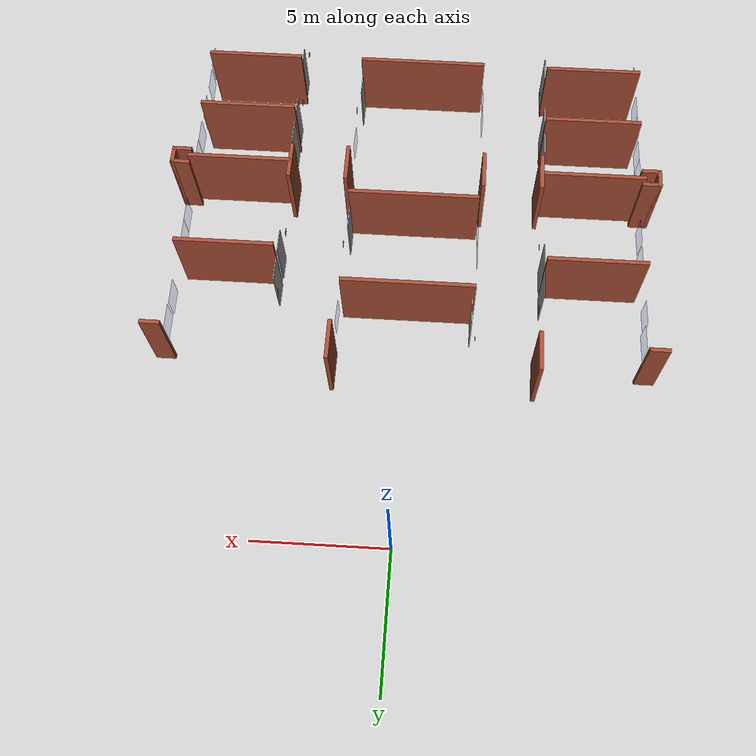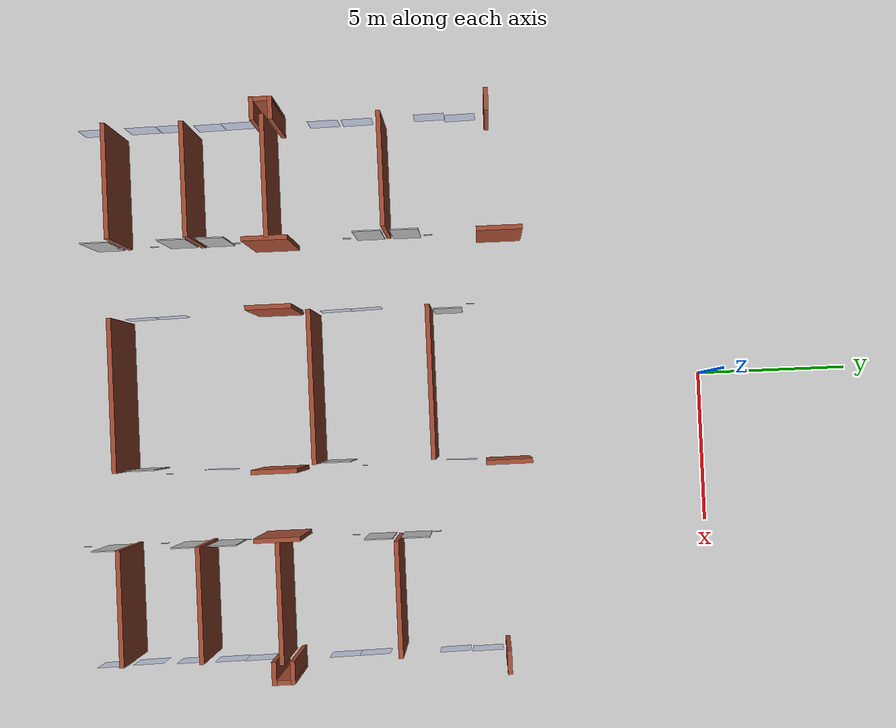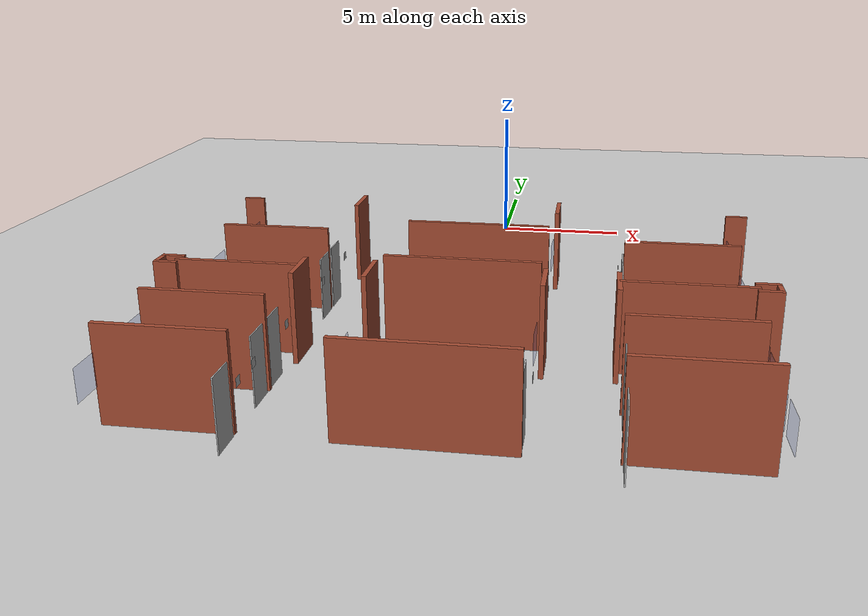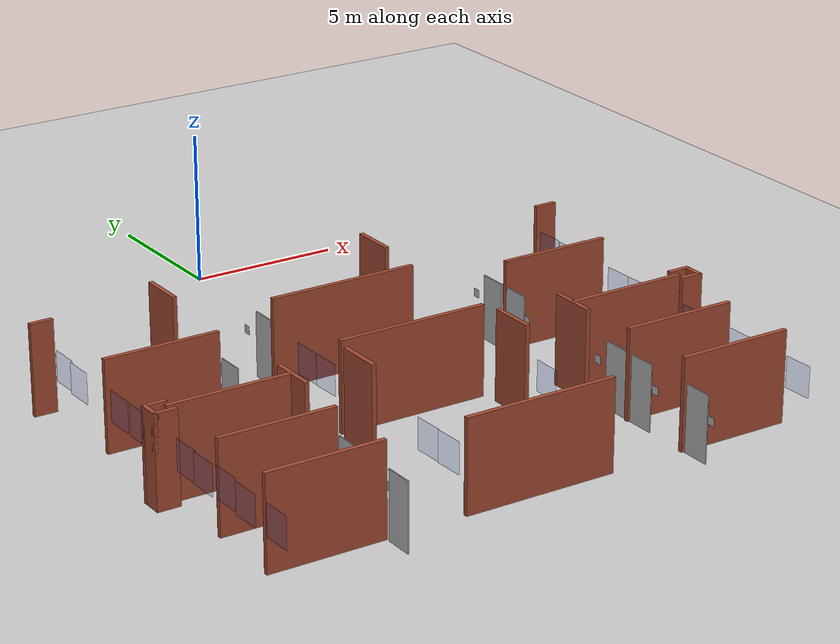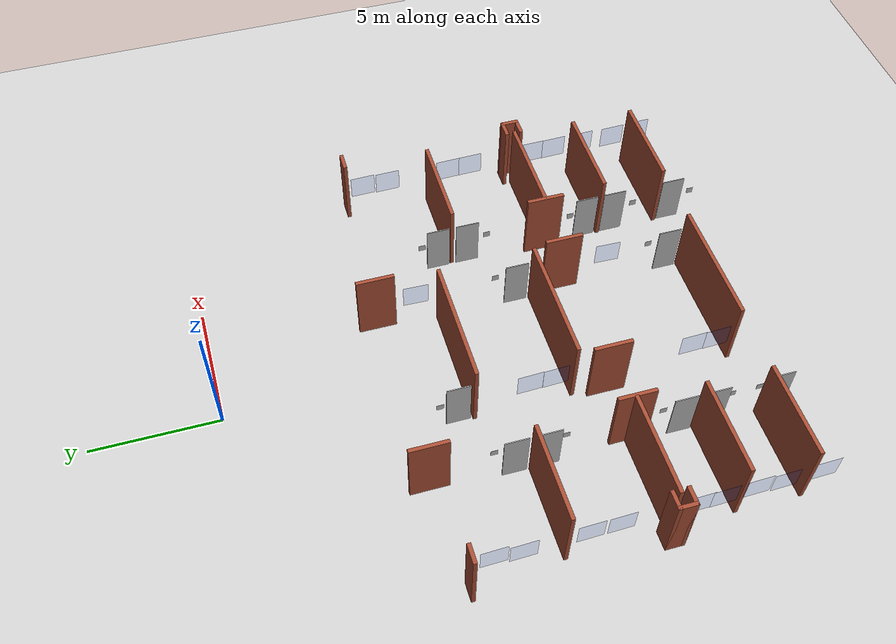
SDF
<sdf version="1.6">
 <world name="default">
  <model name="ground_plane">
   <static>1</static>
   <link name="link">
    <collision name="collision">
     <geometry><plane><normal>0 0 1</normal><size>100 100</size></plane></geometry>
     <surface><friction><ode><mu>100</mu><mu2>50</mu2></ode></friction></surface>
    </collision>
    <visual name="visual">
     <cast_shadows>0</cast_shadows>
     <geometry><plane><normal>0 0 1</normal><size>100 100</size></plane></geometry>
     <material>
      <script><uri>file://media/materials/scripts/gazebo.material</uri><name>Gazebo/Grey</name></script>
     </material>
    </visual>
   </link>
  </model>
  <model name="UNFRGS_INF_-_Predio_73">
   <pose>-0.02513 1.0401 -0.009 0 -0 0</pose>
   <link name="Wall_149">
    <collision name="Wall_149_Collision">
     <geometry><box><size>5 0.15 2.96</size></box></geometry>
     <pose>0 0 1.48 0 -0 0</pose>
    </collision>
    <visual name="Wall_149_Visual">
     <pose>0 0 1.48 0 -0 0</pose>
     <geometry><box><size>5 0.15 2.96</size></box></geometry>
     <material>
      <script><uri>file://media/materials/scripts/gazebo.material</uri><name>Gazebo/Bricks</name></script>
      <ambient>0.929412 1 0.760784 1</ambient>
     </material>
     <meta><layer>0</layer></meta>
    </visual>
    <pose>-0.012133 -20.3742 0 0 -0 0</pose>
   </link>
   <link name="Wall_151">
    <collision name="Wall_151_Collision">
     <geometry><box><size>5 0.15 2.96</size></box></geometry>
     <pose>0 0 1.48 0 -0 0</pose>
    </collision>
    <visual name="Wall_151_Visual">
     <pose>0 0 1.48 0 -0 0</pose>
     <geometry><box><size>5 0.15 2.96</size></box></geometry>
     <material>
      <script><uri>file://media/materials/scripts/gazebo.material</uri><name>Gazebo/Bricks</name></script>
      <ambient>0.929412 1 0.760784 1</ambient>
     </material>
     <meta><layer>0</layer></meta>
    </visual>
    <pose>-0.018133 -13.9553 0 0 -0 0</pose>
   </link>
   <link name="Wall_153">
    <collision name="Wall_153_Collision">
     <geometry><box><size>5 0.15 2.96</size></box></geometry>
     <pose>0 0 1.48 0 -0 0</pose>
    </collision>
    <visual name="Wall_153_Visual">
     <pose>0 0 1.48 0 -0 0</pose>
     <geometry><box><size>5 0.15 2.96</size></box></geometry>
     <material>
      <script><uri>file://media/materials/scripts/gazebo.material</uri><name>Gazebo/Bricks</name></script>
      <ambient>0.929412 1 0.760784 1</ambient>
     </material>
     <meta><layer>0</layer></meta>
    </visual>
    <pose>-0.016133 -10.1202 0 0 -0 0</pose>
   </link>
   <link name="Wall_201">
    <collision name="Wall_201_Collision">
     <geometry><box><size>1.5 0.15 2.96</size></box></geometry>
     <pose>0 0 1.48 0 -0 0</pose>
    </collision>
    <visual name="Wall_201_Visual">
     <pose>0 0 1.48 0 -0 0</pose>
     <geometry><box><size>1.5 0.15 2.96</size></box></geometry>
     <material>
      <script><uri>file://media/materials/scripts/gazebo.material</uri><name>Gazebo/Bricks</name></script>
      <ambient>0.929412 1 0.760784 1</ambient>
     </material>
     <meta><layer>0</layer></meta>
    </visual>
    <pose>-4.87613 -7.68822 0 0 0 -1.5708</pose>
   </link>
   <link name="Wall_205">
    <collision name="Wall_205_Collision">
     <geometry><box><size>1.5 0.15 2.96</size></box></geometry>
     <pose>0 0 1.48 0 -0 0</pose>
    </collision>
    <visual name="Wall_205_Visual">
     <pose>0 0 1.48 0 -0 0</pose>
     <geometry><box><size>1.5 0.15 2.96</size></box></geometry>
     <material>
      <script><uri>file://media/materials/scripts/gazebo.material</uri><name>Gazebo/Bricks</name></script>
      <ambient>0.929412 1 0.760784 1</ambient>
     </material>
     <meta><layer>0</layer></meta>
    </visual>
    <pose>2.66287 -7.68822 0 0 0 -1.5708</pose>
   </link>
   <link name="Wall_209">
    <collision name="Wall_209_Collision">
     <geometry><box><size>3.75 0.15 2.96</size></box></geometry>
     <pose>0 0 1.48 0 -0 0</pose>
    </collision>
    <visual name="Wall_209_Visual">
     <pose>0 0 1.48 0 -0 0</pose>
     <geometry><box><size>3.75 0.15 2.96</size></box></geometry>
     <material>
      <script><uri>file://media/materials/scripts/gazebo.material</uri><name>Gazebo/Bricks</name></script>
      <ambient>0.929412 1 0.760784 1</ambient>
     </material>
     <meta><layer>0</layer></meta>
    </visual>
    <pose>-6.95613 -11.4362 0 0 -0 0</pose>
   </link>
   <link name="Wall_211">
    <collision name="Wall_211_Collision">
     <geometry><box><size>3.75 0.15 2.96</size></box></geometry>
     <pose>0 0 1.48 0 -0 0</pose>
    </collision>
    <visual name="Wall_211_Visual">
     <pose>0 0 1.48 0 -0 0</pose>
     <geometry><box><size>3.75 0.15 2.96</size></box></geometry>
     <material>
      <script><uri>file://media/materials/scripts/gazebo.material</uri><name>Gazebo/Bricks</name></script>
      <ambient>0.929412 1 0.760784 1</ambient>
     </material>
     <meta><layer>0</layer></meta>
    </visual>
    <pose>6.92487 -11.4362 0 0 -0 0</pose>
   </link>
   <link name="Wall_213">
    <collision name="Wall_213_Collision">
     <geometry><box><size>4 0.15 2.96</size></box></geometry>
     <pose>0 0 1.48 0 -0 0</pose>
    </collision>
    <visual name="Wall_213_Visual">
     <pose>0 0 1.48 0 -0 0</pose>
     <geometry><box><size>4 0.15 2.96</size></box></geometry>
     <material>
      <script><uri>file://media/materials/scripts/gazebo.material</uri><name>Gazebo/Bricks</name></script>
      <ambient>0.929412 1 0.760784 1</ambient>
     </material>
     <meta><layer>0</layer></meta>
    </visual>
    <pose>-6.88713 -15.2052 0 0 -0 0</pose>
   </link>
   <link name="Wall_215">
    <collision name="Wall_215_Collision">
     <geometry><box><size>1.5 0.15 2.96</size></box></geometry>
     <pose>0 0 1.48 0 -0 0</pose>
    </collision>
    <visual name="Wall_215_Visual">
     <pose>0 0 1.48 0 -0 0</pose>
     <geometry><box><size>1.5 0.15 2.96</size></box></geometry>
     <material>
      <script><uri>file://media/materials/scripts/gazebo.material</uri><name>Gazebo/Bricks</name></script>
      <ambient>0.929412 1 0.760784 1</ambient>
     </material>
     <meta><layer>0</layer></meta>
    </visual>
    <pose>-4.87613 -15.2682 0 0 0 -1.5708</pose>
   </link>
   <link name="Wall_217">
    <collision name="Wall_217_Collision">
     <geometry><box><size>1.5 0.15 2.96</size></box></geometry>
     <pose>0 0 1.48 0 -0 0</pose>
    </collision>
    <visual name="Wall_217_Visual">
     <pose>0 0 1.48 0 -0 0</pose>
     <geometry><box><size>1.5 0.15 2.96</size></box></geometry>
     <material>
      <script><uri>file://media/materials/scripts/gazebo.material</uri><name>Gazebo/Bricks</name></script>
      <ambient>0.929412 1 0.760784 1</ambient>
     </material>
     <meta><layer>0</layer></meta>
    </visual>
    <pose>-2.65013 -15.2402 0 0 0 -1.5708</pose>
   </link>
   <link name="Wall_219">
    <collision name="Wall_219_Collision">
     <geometry><box><size>1.5 0.15 2.96</size></box></geometry>
     <pose>0 0 1.48 0 -0 0</pose>
    </collision>
    <visual name="Wall_219_Visual">
     <pose>0 0 1.48 0 -0 0</pose>
     <geometry><box><size>1.5 0.15 2.96</size></box></geometry>
     <material>
      <script><uri>file://media/materials/scripts/gazebo.material</uri><name>Gazebo/Bricks</name></script>
      <ambient>0.929412 1 0.760784 1</ambient>
     </material>
     <meta><layer>0</layer></meta>
    </visual>
    <pose>2.64887 -15.2542 0 0 0 -1.5708</pose>
   </link>
   <link name="Wall_221">
    <collision name="Wall_221_Collision">
     <geometry><box><size>1.5 0.15 2.96</size></box></geometry>
     <pose>0 0 1.48 0 -0 0</pose>
    </collision>
    <visual name="Wall_221_Visual">
     <pose>0 0 1.48 0 -0 0</pose>
     <geometry><box><size>1.5 0.15 2.96</size></box></geometry>
     <material>
      <script><uri>file://media/materials/scripts/gazebo.material</uri><name>Gazebo/Bricks</name></script>
      <ambient>0.929412 1 0.760784 1</ambient>
     </material>
     <meta><layer>0</layer></meta>
    </visual>
    <pose>4.84587 -15.2542 0 0 0 -1.5708</pose>
   </link>
   <link name="Wall_223">
    <collision name="Wall_223_Collision">
     <geometry><box><size>4 0.15 2.96</size></box></geometry>
     <pose>0 0 1.48 0 -0 0</pose>
    </collision>
    <visual name="Wall_223_Visual">
     <pose>0 0 1.48 0 -0 0</pose>
     <geometry><box><size>4 0.15 2.96</size></box></geometry>
     <material>
      <script><uri>file://media/materials/scripts/gazebo.material</uri><name>Gazebo/Bricks</name></script>
      <ambient>0.929412 1 0.760784 1</ambient>
     </material>
     <meta><layer>0</layer></meta>
    </visual>
    <pose>6.84087 -15.2472 0 0 -0 0</pose>
   </link>
   <link name="Wall_225">
    <collision name="Wall_225_Collision">
     <geometry><box><size>3.75 0.15 2.96</size></box></geometry>
     <pose>0 0 1.48 0 -0 0</pose>
    </collision>
    <visual name="Wall_225_Visual">
     <pose>0 0 1.48 0 -0 0</pose>
     <geometry><box><size>3.75 0.15 2.96</size></box></geometry>
     <material>
      <script><uri>file://media/materials/scripts/gazebo.material</uri><name>Gazebo/Bricks</name></script>
      <ambient>0.929412 1 0.760784 1</ambient>
     </material>
     <meta><layer>0</layer></meta>
    </visual>
    <pose>-6.90013 -17.8062 0 0 -0 0</pose>
   </link>
   <link name="Wall_227">
    <collision name="Wall_227_Collision">
     <geometry><box><size>3.75 0.15 2.96</size></box></geometry>
     <pose>0 0 1.48 0 -0 0</pose>
    </collision>
    <visual name="Wall_227_Visual">
     <pose>0 0 1.48 0 -0 0</pose>
     <geometry><box><size>3.75 0.15 2.96</size></box></geometry>
     <material>
      <script><uri>file://media/materials/scripts/gazebo.material</uri><name>Gazebo/Bricks</name></script>
      <ambient>0.929412 1 0.760784 1</ambient>
     </material>
     <meta><layer>0</layer></meta>
    </visual>
    <pose>6.82687 -17.8062 0 0 -0 0</pose>
   </link>
   <link name="Wall_229">
    <collision name="Wall_229_Collision">
     <geometry><box><size>3.75 0.15 2.96</size></box></geometry>
     <pose>0 0 1.48 0 -0 0</pose>
    </collision>
    <visual name="Wall_229_Visual">
     <pose>0 0 1.48 0 -0 0</pose>
     <geometry><box><size>3.75 0.15 2.96</size></box></geometry>
     <material>
      <script><uri>file://media/materials/scripts/gazebo.material</uri><name>Gazebo/Bricks</name></script>
      <ambient>0.929412 1 0.760784 1</ambient>
     </material>
     <meta><layer>0</layer></meta>
    </visual>
    <pose>-6.94213 -20.3372 0 0 -0 0</pose>
   </link>
   <link name="Wall_231">
    <collision name="Wall_231_Collision">
     <geometry><box><size>3.75 0.15 2.96</size></box></geometry>
     <pose>0 0 1.48 0 -0 0</pose>
    </collision>
    <visual name="Wall_231_Visual">
     <pose>0 0 1.48 0 -0 0</pose>
     <geometry><box><size>3.75 0.15 2.96</size></box></geometry>
     <material>
      <script><uri>file://media/materials/scripts/gazebo.material</uri><name>Gazebo/Bricks</name></script>
      <ambient>0.929412 1 0.760784 1</ambient>
     </material>
     <meta><layer>0</layer></meta>
    </visual>
    <pose>6.82687 -20.3652 0 0 -0 0</pose>
   </link>
   <link name="Wall_676">
    <collision name="Wall_676_Collision">
     <geometry><box><size>0.75 0.15 2.96</size></box></geometry>
     <pose>0 0 1.48 0 -0 0</pose>
    </collision>
    <visual name="Wall_676_Visual">
     <pose>0 0 1.48 0 -0 0</pose>
     <geometry><box><size>0.75 0.15 2.96</size></box></geometry>
     <material>
      <script><uri>file://media/materials/scripts/gazebo.material</uri><name>Gazebo/Bricks</name></script>
      <ambient>0.498039 0.498039 0.498039 1</ambient>
     </material>
     <meta><layer>0</layer></meta>
    </visual>
    <pose>-9.07813 -14.9152 0 0 -0 3.14159</pose>
   </link>
   <link name="Wall_677">
    <collision name="Wall_677_Collision">
     <geometry><box><size>0.75 0.15 2.96</size></box></geometry>
     <pose>0 0 1.48 0 -0 0</pose>
    </collision>
    <visual name="Wall_677_Visual">
     <pose>0 0 1.48 0 -0 0</pose>
     <geometry><box><size>0.75 0.15 2.96</size></box></geometry>
     <material>
      <script><uri>file://media/materials/scripts/gazebo.material</uri><name>Gazebo/Bricks</name></script>
      <ambient>0.498039 0.498039 0.498039 1</ambient>
     </material>
     <meta><layer>0</layer></meta>
    </visual>
    <pose>-9.37813 -15.2152 0 0 0 -1.5708</pose>
   </link>
   <link name="Wall_678">
    <collision name="Wall_678_Collision">
     <geometry><box><size>0.75 0.15 2.96</size></box></geometry>
     <pose>0 0 1.48 0 -0 0</pose>
    </collision>
    <visual name="Wall_678_Visual">
     <pose>0 0 1.48 0 -0 0</pose>
     <geometry><box><size>0.75 0.15 2.96</size></box></geometry>
     <material>
      <script><uri>file://media/materials/scripts/gazebo.material</uri><name>Gazebo/Bricks</name></script>
      <ambient>0.498039 0.498039 0.498039 1</ambient>
     </material>
     <meta><layer>0</layer></meta>
    </visual>
    <pose>-9.07813 -15.5152 0 0 -0 0</pose>
   </link>
   <link name="Wall_680">
    <collision name="Wall_680_Collision">
     <geometry><box><size>0.75 0.15 2.96</size></box></geometry>
     <pose>0 0 1.48 0 -0 0</pose>
    </collision>
    <visual name="Wall_680_Visual">
     <pose>0 0 1.48 0 -0 0</pose>
     <geometry><box><size>0.75 0.15 2.96</size></box></geometry>
     <material>
      <script><uri>file://media/materials/scripts/gazebo.material</uri><name>Gazebo/Bricks</name></script>
      <ambient>0.498039 0.498039 0.498039 1</ambient>
     </material>
     <meta><layer>0</layer></meta>
    </visual>
    <pose>9.09287 -14.9152 0 0 -0 0</pose>
   </link>
   <link name="Wall_681">
    <collision name="Wall_681_Collision">
     <geometry><box><size>0.75 0.15 2.96</size></box></geometry>
     <pose>0 0 1.48 0 -0 0</pose>
    </collision>
    <visual name="Wall_681_Visual">
     <pose>0 0 1.48 0 -0 0</pose>
     <geometry><box><size>0.75 0.15 2.96</size></box></geometry>
     <material>
      <script><uri>file://media/materials/scripts/gazebo.material</uri><name>Gazebo/Bricks</name></script>
      <ambient>0.498039 0.498039 0.498039 1</ambient>
     </material>
     <meta><layer>0</layer></meta>
    </visual>
    <pose>9.39287 -15.2152 0 0 0 -1.5708</pose>
   </link>
   <link name="Wall_682">
    <collision name="Wall_682_Collision">
     <geometry><box><size>0.75 0.15 2.96</size></box></geometry>
     <pose>0 0 1.48 0 -0 0</pose>
    </collision>
    <visual name="Wall_682_Visual">
     <pose>0 0 1.48 0 -0 0</pose>
     <geometry><box><size>0.75 0.15 2.96</size></box></geometry>
     <material>
      <script><uri>file://media/materials/scripts/gazebo.material</uri><name>Gazebo/Bricks</name></script>
      <ambient>0.498039 0.498039 0.498039 1</ambient>
     </material>
     <meta><layer>0</layer></meta>
    </visual>
    <pose>9.09287 -15.5152 0 0 -0 3.14159</pose>
   </link>
   <link name="Wall_686">
    <collision name="Wall_686_Collision">
     <geometry><box><size>0.75 0.15 2.96</size></box></geometry>
     <pose>0 0 1.48 0 -0 0</pose>
    </collision>
    <visual name="Wall_686_Visual">
     <pose>0 0 1.48 0 -0 0</pose>
     <geometry><box><size>0.75 0.15 2.96</size></box></geometry>
     <material>
      <script><uri>file://media/materials/scripts/gazebo.material</uri><name>Gazebo/Bricks</name></script>
      <ambient>0.498039 0.498039 0.498039 1</ambient>
     </material>
     <meta><layer>0</layer></meta>
    </visual>
    <pose>9.07887 -7.96322 0 0 -0 3.14159</pose>
   </link>
   <link name="Wall_690">
    <collision name="Wall_690_Collision">
     <geometry><box><size>0.75 0.15 2.96</size></box></geometry>
     <pose>0 0 1.48 0 -0 0</pose>
    </collision>
    <visual name="Wall_690_Visual">
     <pose>0 0 1.48 0 -0 0</pose>
     <geometry><box><size>0.75 0.15 2.96</size></box></geometry>
     <material>
      <script><uri>file://media/materials/scripts/gazebo.material</uri><name>Gazebo/Bricks</name></script>
      <ambient>0.498039 0.498039 0.498039 1</ambient>
     </material>
     <meta><layer>0</layer></meta>
    </visual>
    <pose>-9.04913 -7.93422 0 0 -0 0</pose>
   </link>
   <static>1</static>
  </model>
  <model name="placa_235">
   <pose>4.88 -9.1 1.48209 0 -0 1.57</pose>
   <static>1</static>
   <link name="link">
    <collision name="collision"><geometry><box><size>0.268 0.001 0.268</size></box></geometry></collision>
    <visual name="visual">
     <geometry><box><size>0.268 0.001 0.268</size></box></geometry>
     <material>
      <script>
       <uri>model://Placa_235/Materials/Scripts</uri>
       <uri>model://Placa_235/Materials/Textures</uri>
       <name>TexturaPlaca_235/Image</name>
      </script>
     </material>
    </visual>
   </link>
  </model>
  <model name="placa_237">
   <pose>4.88 -11.8 1.48209 0 -0 1.57</pose>
   <static>1</static>
   <link name="link">
    <collision name="collision"><geometry><box><size>0.268 0.001 0.268</size></box></geometry></collision>
    <visual name="visual">
     <geometry><box><size>0.268 0.001 0.268</size></box></geometry>
     <material>
      <script>
       <uri>model://Placa_237/Materials/Scripts</uri>
       <uri>model://Placa_237/Materials/Textures</uri>
       <name>TexturaPlaca_237/Image</name>
      </script>
     </material>
    </visual>
   </link>
  </model>
  <model name="placa_238">
   <pose>-2.615 -7.7 1.48209 0 -0 1.57</pose>
   <static>1</static>
   <link name="link">
    <collision name="collision"><geometry><box><size>0.268 0.001 0.268</size></box></geometry></collision>
    <visual name="visual">
     <geometry><box><size>0.268 0.001 0.268</size></box></geometry>
     <material>
      <script>
       <uri>model://Placa_238/Materials/Scripts</uri>
       <uri>model://Placa_238/Materials/Textures</uri>
       <name>TexturaPlaca_238/Image</name>
      </script>
     </material>
    </visual>
   </link>
  </model>
  <model name="placa_239">
   <pose>2.6 -11.45 1.48209 0 -0 1.57</pose>
   <static>1</static>
   <link name="link">
    <collision name="collision"><geometry><box><size>0.268 0.001 0.268</size></box></geometry></collision>
    <visual name="visual">
     <geometry><box><size>0.268 0.001 0.268</size></box></geometry>
     <material>
      <script>
       <uri>model://Placa_239/Materials/Scripts</uri>
       <uri>model://Placa_239/Materials/Textures</uri>
       <name>TexturaPlaca_239/Image</name>
      </script>
     </material>
    </visual>
   </link>
  </model>
  <model name="placa_240">
   <pose>-4.96 -9 1.48208 0 -0 1.57</pose>
   <static>1</static>
   <link name="link">
    <collision name="collision"><geometry><box><size>0.268 0.001 0.268</size></box></geometry></collision>
    <visual name="visual">
     <geometry><box><size>0.268 0.001 0.268</size></box></geometry>
     <material>
      <script>
       <uri>model://Placa_240/Materials/Scripts</uri>
       <uri>model://Placa_240/Materials/Textures</uri>
       <name>TexturaPlaca_240/Image</name>
      </script>
     </material>
    </visual>
   </link>
  </model>
  <model name="placa_241">
   <pose>4.88 -15.4 1.48209 0 -0 1.57</pose>
   <static>1</static>
   <link name="link">
    <collision name="collision"><geometry><box><size>0.268 0.001 0.268</size></box></geometry></collision>
    <visual name="visual">
     <geometry><box><size>0.268 0.001 0.268</size></box></geometry>
     <material>
      <script>
       <uri>model://Placa_241/Materials/Scripts</uri>
       <uri>model://Placa_241/Materials/Textures</uri>
       <name>TexturaPlaca_241/Image</name>
      </script>
     </material>
    </visual>
   </link>
  </model>
  <model name="placa_242">
   <pose>-4.96 -11.7 1.48208 0 -0 1.57</pose>
   <static>1</static>
   <link name="link">
    <collision name="collision"><geometry><box><size>0.268 0.001 0.268</size></box></geometry></collision>
    <visual name="visual">
     <geometry><box><size>0.268 0.001 0.268</size></box></geometry>
     <material>
      <script>
       <uri>model://Placa_242/Materials/Scripts</uri>
       <uri>model://Placa_242/Materials/Textures</uri>
       <name>TexturaPlaca_242/Image</name>
      </script>
     </material>
    </visual>
   </link>
  </model>
  <model name="placa_243">
   <pose>4.88 -18.15 1.48209 0 -0 1.57</pose>
   <static>1</static>
   <link name="link">
    <collision name="collision"><geometry><box><size>0.268 0.001 0.268</size></box></geometry></collision>
    <visual name="visual">
     <geometry><box><size>0.268 0.001 0.268</size></box></geometry>
     <material>
      <script>
       <uri>model://Placa_243/Materials/Scripts</uri>
       <uri>model://Placa_243/Materials/Textures</uri>
       <name>TexturaPlaca_243/Image</name>
      </script>
     </material>
    </visual>
   </link>
  </model>
  <model name="placa_244">
   <pose>-4.96 -15.4 1.48208 0 -0 1.57</pose>
   <static>1</static>
   <link name="link">
    <collision name="collision"><geometry><box><size>0.268 0.001 0.268</size></box></geometry></collision>
    <visual name="visual">
     <geometry><box><size>0.268 0.001 0.268</size></box></geometry>
     <material>
      <script>
       <uri>model://Placa_244/Materials/Scripts</uri>
       <uri>model://Placa_244/Materials/Textures</uri>
       <name>TexturaPlaca_244/Image</name>
      </script>
     </material>
    </visual>
   </link>
  </model>
  <model name="placa_245">
   <pose>2.6 -17.91 1.48209 0 -0 1.57</pose>
   <static>1</static>
   <link name="link">
    <collision name="collision"><geometry><box><size>0.268 0.001 0.268</size></box></geometry></collision>
    <visual name="visual">
     <geometry><box><size>0.268 0.001 0.268</size></box></geometry>
     <material>
      <script>
       <uri>model://Placa_245/Materials/Scripts</uri>
       <uri>model://Placa_245/Materials/Textures</uri>
       <name>TexturaPlaca_245/Image</name>
      </script>
     </material>
    </visual>
   </link>
  </model>
  <model name="placa_246">
   <pose>-4.96 -18.1 1.48208 0 -0 1.57</pose>
   <static>1</static>
   <link name="link">
    <collision name="collision"><geometry><box><size>0.268 0.001 0.268</size></box></geometry></collision>
    <visual name="visual">
     <geometry><box><size>0.268 0.001 0.268</size></box></geometry>
     <material>
      <script>
       <uri>model://Placa_246/Materials/Scripts</uri>
       <uri>model://Placa_246/Materials/Textures</uri>
       <name>TexturaPlaca_246/Image</name>
      </script>
     </material>
    </visual>
   </link>
  </model>
  <model name="placa_247">
   <pose>4.88 -20.7 1.48209 0 -0 1.57</pose>
   <static>1</static>
   <link name="link">
    <collision name="collision"><geometry><box><size>0.268 0.001 0.268</size></box></geometry></collision>
    <visual name="visual">
     <geometry><box><size>0.268 0.001 0.268</size></box></geometry>
     <material>
      <script>
       <uri>model://Placa_247/Materials/Scripts</uri>
       <uri>model://Placa_247/Materials/Textures</uri>
       <name>TexturaPlaca_247/Image</name>
      </script>
     </material>
    </visual>
   </link>
  </model>
  <model name="placa_248">
   <pose>-4.96 -19.2 1.48208 0 -0 1.57</pose>
   <static>1</static>
   <link name="link">
    <collision name="collision"><geometry><box><size>0.268 0.001 0.268</size></box></geometry></collision>
    <visual name="visual">
     <geometry><box><size>0.268 0.001 0.268</size></box></geometry>
     <material>
      <script>
       <uri>model://Placa_248/Materials/Scripts</uri>
       <uri>model://Placa_248/Materials/Textures</uri>
       <name>TexturaPlaca_248/Image</name>
      </script>
     </material>
    </visual>
   </link>
  </model>
  <model name="PortaInternaDireita_4">
   <pose>-5.1 -9.77 1.075 0 -0 1.57</pose>
   <static>1</static>
   <link name="link">
    <collision name="collision"><geometry><box><size>2.15 3.5 0.94</size></box></geometry></collision>
    <visual name="visual">
     <geometry><box><size>0.94 0.035 2.15</size></box></geometry>
     <material>
      <script>
       <uri>model://PortaInternaDireita/materials/scripts</uri>
       <uri>model://PortaInternaDireita/materials/textures</uri>
       <name>TexturaPortaInternaDireita/Image</name>
      </script>
     </material>
    </visual>
   </link>
  </model>
  <model name="PortaInternaEsquerda_7">
   <pose>-5.1 -11.01 1.075 0 -0 1.57</pose>
   <static>1</static>
   <link name="link">
    <collision name="collision"><geometry><box><size>2.15 3.5 0.94</size></box></geometry></collision>
    <visual name="visual">
     <geometry><box><size>0.94 0.035 2.15</size></box></geometry>
     <material>
      <script>
       <uri>model://PortaInternaEsquerda/materials/scripts</uri>
       <uri>model://PortaInternaEsquerda/materials/textures</uri>
       <name>TexturaPortaInternaEsquerda/Image</name>
      </script>
     </material>
    </visual>
   </link>
  </model>
  <model name="PortaInternaDireita_5">
   <pose>-5.1 -16.17 1.075 0 -0 1.57</pose>
   <static>1</static>
   <link name="link">
    <collision name="collision"><geometry><box><size>2.15 3.5 0.94</size></box></geometry></collision>
    <visual name="visual">
     <geometry><box><size>0.94 0.035 2.15</size></box></geometry>
     <material>
      <script>
       <uri>model://PortaInternaDireita/materials/scripts</uri>
       <uri>model://PortaInternaDireita/materials/textures</uri>
       <name>TexturaPortaInternaDireita/Image</name>
      </script>
     </material>
    </visual>
   </link>
  </model>
  <model name="PortaInternaEsquerda_8">
   <pose>-5.1 -17.43 1.075 0 -0 1.57</pose>
   <static>1</static>
   <link name="link">
    <collision name="collision"><geometry><box><size>2.15 3.5 0.94</size></box></geometry></collision>
    <visual name="visual">
     <geometry><box><size>0.94 0.035 2.15</size></box></geometry>
     <material>
      <script>
       <uri>model://PortaInternaEsquerda/materials/scripts</uri>
       <uri>model://PortaInternaEsquerda/materials/textures</uri>
       <name>TexturaPortaInternaEsquerda/Image</name>
      </script>
     </material>
    </visual>
   </link>
  </model>
  <model name="PortaInternaEsquerda_9">
   <pose>-5.1 -19.9469 1.075 0 -0 1.57</pose>
   <static>1</static>
   <link name="link">
    <collision name="collision"><geometry><box><size>2.15 3.5 0.94</size></box></geometry></collision>
    <visual name="visual">
     <geometry><box><size>0.94 0.035 2.15</size></box></geometry>
     <material>
      <script>
       <uri>model://PortaInternaEsquerda/materials/scripts</uri>
       <uri>model://PortaInternaEsquerda/materials/textures</uri>
       <name>TexturaPortaInternaEsquerda/Image</name>
      </script>
     </material>
    </visual>
   </link>
  </model>
  <model name="PortaInternaDireita_8">
   <pose>5 -19.93 1.075 0 -0 1.57</pose>
   <static>1</static>
   <link name="link">
    <collision name="collision"><geometry><box><size>2.15 3.5 0.94</size></box></geometry></collision>
    <visual name="visual">
     <geometry><box><size>0.94 0.035 2.15</size></box></geometry>
     <material>
      <script>
       <uri>model://PortaInternaDireita/materials/scripts</uri>
       <uri>model://PortaInternaDireita/materials/textures</uri>
       <name>TexturaPortaInternaDireita/Image</name>
      </script>
     </material>
    </visual>
   </link>
  </model>
  <model name="PortaInternaDireita_9">
   <pose>5 -17.35 1.075 0 -0 1.57</pose>
   <static>1</static>
   <link name="link">
    <collision name="collision"><geometry><box><size>2.15 3.5 0.94</size></box></geometry></collision>
    <visual name="visual">
     <geometry><box><size>0.94 0.035 2.15</size></box></geometry>
     <material>
      <script>
       <uri>model://PortaInternaDireita/materials/scripts</uri>
       <uri>model://PortaInternaDireita/materials/textures</uri>
       <name>TexturaPortaInternaDireita/Image</name>
      </script>
     </material>
    </visual>
   </link>
  </model>
  <model name="PortaInternaEsquerda_12">
   <pose>5 -16.15 1.075 0 -0 1.57</pose>
   <static>1</static>
   <link name="link">
    <collision name="collision"><geometry><box><size>2.15 3.5 0.94</size></box></geometry></collision>
    <visual name="visual">
     <geometry><box><size>0.94 0.035 2.15</size></box></geometry>
     <material>
      <script>
       <uri>model://PortaInternaEsquerda/materials/scripts</uri>
       <uri>model://PortaInternaEsquerda/materials/textures</uri>
       <name>TexturaPortaInternaEsquerda/Image</name>
      </script>
     </material>
    </visual>
   </link>
  </model>
  <model name="PortaInternaDireita_10">
   <pose>5 -11.02 1.075 0 -0 1.57</pose>
   <static>1</static>
   <link name="link">
    <collision name="collision"><geometry><box><size>2.15 3.5 0.94</size></box></geometry></collision>
    <visual name="visual">
     <geometry><box><size>0.94 0.035 2.15</size></box></geometry>
     <material>
      <script>
       <uri>model://PortaInternaDireita/materials/scripts</uri>
       <uri>model://PortaInternaDireita/materials/textures</uri>
       <name>TexturaPortaInternaDireita/Image</name>
      </script>
     </material>
    </visual>
   </link>
  </model>
  <model name="PortaInternaEsquerda_13">
   <pose>5 -9.81 1.075 0 -0 1.57</pose>
   <static>1</static>
   <link name="link">
    <collision name="collision"><geometry><box><size>2.15 3.5 0.94</size></box></geometry></collision>
    <visual name="visual">
     <geometry><box><size>0.94 0.035 2.15</size></box></geometry>
     <material>
      <script>
       <uri>model://PortaInternaEsquerda/materials/scripts</uri>
       <uri>model://PortaInternaEsquerda/materials/textures</uri>
       <name>TexturaPortaInternaEsquerda/Image</name>
      </script>
     </material>
    </visual>
   </link>
  </model>
  <model name="PortaInternaEsquerda_25">
   <pose>-2.45 -8.45 1.075 0 -0 1.57</pose>
   <static>1</static>
   <link name="link">
    <collision name="collision"><geometry><box><size>2.15 3.5 0.94</size></box></geometry></collision>
    <visual name="visual">
     <geometry><box><size>0.94 0.035 2.15</size></box></geometry>
     <material>
      <script>
       <uri>model://PortaInternaEsquerda/materials/scripts</uri>
       <uri>model://PortaInternaEsquerda/materials/textures</uri>
       <name>TexturaPortaInternaEsquerda/Image</name>
      </script>
     </material>
    </visual>
   </link>
  </model>
  <model name="PortaInternaDireita_18">
   <pose>2.43 -18.71 1.075 0 -0 1.57</pose>
   <static>1</static>
   <link name="link">
    <collision name="collision"><geometry><box><size>2.15 3.5 0.94</size></box></geometry></collision>
    <visual name="visual">
     <geometry><box><size>0.94 0.035 2.15</size></box></geometry>
     <material>
      <script>
       <uri>model://PortaInternaDireita/materials/scripts</uri>
       <uri>model://PortaInternaDireita/materials/textures</uri>
       <name>TexturaPortaInternaDireita/Image</name>
      </script>
     </material>
    </visual>
   </link>
  </model>
  <model name="PortaInternaDireita_19">
   <pose>2.43 -12.28 1.075 0 -0 1.57</pose>
   <static>1</static>
   <link name="link">
    <collision name="collision"><geometry><box><size>2.15 3.5 0.94</size></box></geometry></collision>
    <visual name="visual">
     <geometry><box><size>0.94 0.035 2.15</size></box></geometry>
     <material>
      <script>
       <uri>model://PortaInternaDireita/materials/scripts</uri>
       <uri>model://PortaInternaDireita/materials/textures</uri>
       <name>TexturaPortaInternaDireita/Image</name>
      </script>
     </material>
    </visual>
   </link>
  </model>
  <model name="vidro_12">
   <pose>8.77539 -19.8583 0.345998 0 0 -1.55</pose>
   <link name="Wall_2">
    <collision name="Wall_2_Collision">
     <geometry><box><size>1 0.001 1</size></box></geometry>
     <pose>0 0 1.25 0 -0 0</pose>
    </collision>
    <visual name="Wall_2_Visual">
     <pose>0 0 1.25 0 -0 0</pose>
     <transparency>0.8</transparency>
     <geometry><box><size>1 0.001 1</size></box></geometry>
     <material>
      <script><uri>file://media/materials/scripts/gazebo.material</uri><name>Gazebo/BlueTransparent</name></script>
      <ambient>0.1 0.1 0.1 0.1</ambient>
     </material>
     <meta><layer>0</layer></meta>
    </visual>
    <pose>0 0 0 0 -0 3.14159</pose>
   </link>
   <static>1</static>
  </model>
  <model name="vidro_13">
   <pose>8.73636 -18.6891 0.34421 0 0 -1.55</pose>
   <link name="Wall_2">
    <collision name="Wall_2_Collision">
     <geometry><box><size>1 0.001 1</size></box></geometry>
     <pose>0 0 1.25 0 -0 0</pose>
    </collision>
    <visual name="Wall_2_Visual">
     <pose>0 0 1.25 0 -0 0</pose>
     <transparency>0.8</transparency>
     <geometry><box><size>1 0.001 1</size></box></geometry>
     <material>
      <script><uri>file://media/materials/scripts/gazebo.material</uri><name>Gazebo/BlueTransparent</name></script>
      <ambient>0.1 0.1 0.1 0.1</ambient>
     </material>
     <meta><layer>0</layer></meta>
    </visual>
    <pose>0 0 0 0 -0 3.14159</pose>
   </link>
   <static>1</static>
  </model>
  <model name="vidro_14">
   <pose>8.7509 -17.2721 0.347066 0 0 -1.55</pose>
   <link name="Wall_2">
    <collision name="Wall_2_Collision">
     <geometry><box><size>1 0.001 1</size></box></geometry>
     <pose>0 0 1.25 0 -0 0</pose>
    </collision>
    <visual name="Wall_2_Visual">
     <pose>0 0 1.25 0 -0 0</pose>
     <transparency>0.8</transparency>
     <geometry><box><size>1 0.001 1</size></box></geometry>
     <material>
      <script><uri>file://media/materials/scripts/gazebo.material</uri><name>Gazebo/BlueTransparent</name></script>
      <ambient>0.1 0.1 0.1 0.1</ambient>
     </material>
     <meta><layer>0</layer></meta>
    </visual>
    <pose>0 0 0 0 -0 3.14159</pose>
   </link>
   <static>1</static>
  </model>
  <model name="vidro_15">
   <pose>8.75607 -16.0178 0.351099 0 0 -1.55</pose>
   <link name="Wall_2">
    <collision name="Wall_2_Collision">
     <geometry><box><size>1 0.001 1</size></box></geometry>
     <pose>0 0 1.25 0 -0 0</pose>
    </collision>
    <visual name="Wall_2_Visual">
     <pose>0 0 1.25 0 -0 0</pose>
     <transparency>0.8</transparency>
     <geometry><box><size>1 0.001 1</size></box></geometry>
     <material>
      <script><uri>file://media/materials/scripts/gazebo.material</uri><name>Gazebo/BlueTransparent</name></script>
      <ambient>0.1 0.1 0.1 0.1</ambient>
     </material>
     <meta><layer>0</layer></meta>
    </visual>
    <pose>0 0 0 0 -0 3.14159</pose>
   </link>
   <static>1</static>
  </model>
  <model name="vidro_16">
   <pose>8.75787 -15.0455 0.345367 0 0 -1.55</pose>
   <link name="Wall_2">
    <collision name="Wall_2_Collision">
     <geometry><box><size>1 0.001 1</size></box></geometry>
     <pose>0 0 1.25 0 -0 0</pose>
    </collision>
    <visual name="Wall_2_Visual">
     <pose>0 0 1.25 0 -0 0</pose>
     <transparency>0.8</transparency>
     <geometry><box><size>1 0.001 1</size></box></geometry>
     <material>
      <script><uri>file://media/materials/scripts/gazebo.material</uri><name>Gazebo/BlueTransparent</name></script>
      <ambient>0.1 0.1 0.1 0.1</ambient>
     </material>
     <meta><layer>0</layer></meta>
    </visual>
    <pose>0 0 0 0 -0 3.14159</pose>
   </link>
   <static>1</static>
  </model>
  <model name="vidro_17">
   <pose>8.76815 -12.2703 0.337883 0 0 -1.55</pose>
   <link name="Wall_2">
    <collision name="Wall_2_Collision">
     <geometry><box><size>1 0.001 1</size></box></geometry>
     <pose>0 0 1.25 0 -0 0</pose>
    </collision>
    <visual name="Wall_2_Visual">
     <pose>0 0 1.25 0 -0 0</pose>
     <transparency>0.8</transparency>
     <geometry><box><size>1 0.001 1</size></box></geometry>
     <material>
      <script><uri>file://media/materials/scripts/gazebo.material</uri><name>Gazebo/BlueTransparent</name></script>
      <ambient>0.1 0.1 0.1 0.1</ambient>
     </material>
     <meta><layer>0</layer></meta>
    </visual>
    <pose>0 0 0 0 -0 3.14159</pose>
   </link>
   <static>1</static>
  </model>
  <model name="vidro_18">
   <pose>8.74665 -11.2893 0.340717 0 0 -1.55</pose>
   <link name="Wall_2">
    <collision name="Wall_2_Collision">
     <geometry><box><size>1 0.001 1</size></box></geometry>
     <pose>0 0 1.25 0 -0 0</pose>
    </collision>
    <visual name="Wall_2_Visual">
     <pose>0 0 1.25 0 -0 0</pose>
     <transparency>0.8</transparency>
     <geometry><box><size>1 0.001 1</size></box></geometry>
     <material>
      <script><uri>file://media/materials/scripts/gazebo.material</uri><name>Gazebo/BlueTransparent</name></script>
      <ambient>0.1 0.1 0.1 0.1</ambient>
     </material>
     <meta><layer>0</layer></meta>
    </visual>
    <pose>0 0 0 0 -0 3.14159</pose>
   </link>
   <static>1</static>
  </model>
  <model name="vidro_19">
   <pose>8.75789 -8.66241 0.345707 0 0 -1.55</pose>
   <link name="Wall_2">
    <collision name="Wall_2_Collision">
     <geometry><box><size>1 0.001 1</size></box></geometry>
     <pose>0 0 1.25 0 -0 0</pose>
    </collision>
    <visual name="Wall_2_Visual">
     <pose>0 0 1.25 0 -0 0</pose>
     <transparency>0.8</transparency>
     <geometry><box><size>1 0.001 1</size></box></geometry>
     <material>
      <script><uri>file://media/materials/scripts/gazebo.material</uri><name>Gazebo/BlueTransparent</name></script>
      <ambient>0.1 0.1 0.1 0.1</ambient>
     </material>
     <meta><layer>0</layer></meta>
    </visual>
    <pose>0 0 0 0 -0 3.14159</pose>
   </link>
   <static>1</static>
  </model>
  <model name="vidro_20">
   <pose>8.76754 -7.6041 0.361893 0 0 -1.55</pose>
   <link name="Wall_2">
    <collision name="Wall_2_Collision">
     <geometry><box><size>1 0.001 1</size></box></geometry>
     <pose>0 0 1.25 0 -0 0</pose>
    </collision>
    <visual name="Wall_2_Visual">
     <pose>0 0 1.25 0 -0 0</pose>
     <transparency>0.8</transparency>
     <geometry><box><size>1 0.001 1</size></box></geometry>
     <material>
      <script><uri>file://media/materials/scripts/gazebo.material</uri><name>Gazebo/BlueTransparent</name></script>
      <ambient>0.1 0.1 0.1 0.1</ambient>
     </material>
     <meta><layer>0</layer></meta>
    </visual>
    <pose>0 0 0 0 -0 3.14159</pose>
   </link>
   <static>1</static>
  </model>
  <model name="vidro_73">
   <pose>-8.80282 -7.77976 0.362145 0 0 -1.55</pose>
   <link name="Wall_2">
    <collision name="Wall_2_Collision">
     <geometry><box><size>1 0.001 1</size></box></geometry>
     <pose>0 0 1.25 0 -0 0</pose>
    </collision>
    <visual name="Wall_2_Visual">
     <pose>0 0 1.25 0 -0 0</pose>
     <transparency>0.8</transparency>
     <geometry><box><size>1 0.001 1</size></box></geometry>
     <material>
      <script><uri>file://media/materials/scripts/gazebo.material</uri><name>Gazebo/BlueTransparent</name></script>
      <ambient>0.1 0.1 0.1 0.1</ambient>
     </material>
     <meta><layer>0</layer></meta>
    </visual>
    <pose>0 0 0 0 -0 3.14159</pose>
   </link>
   <static>1</static>
  </model>
  <model name="vidro_74">
   <pose>-8.8607 -8.7966 0.35755 0 0 -1.55</pose>
   <link name="Wall_2">
    <collision name="Wall_2_Collision">
     <geometry><box><size>1 0.001 1</size></box></geometry>
     <pose>0 0 1.25 0 -0 0</pose>
    </collision>
    <visual name="Wall_2_Visual">
     <pose>0 0 1.25 0 -0 0</pose>
     <transparency>0.8</transparency>
     <geometry><box><size>1 0.001 1</size></box></geometry>
     <material>
      <script><uri>file://media/materials/scripts/gazebo.material</uri><name>Gazebo/BlueTransparent</name></script>
      <ambient>0.1 0.1 0.1 0.1</ambient>
     </material>
     <meta><layer>0</layer></meta>
    </visual>
    <pose>0 0 0 0 -0 3.14159</pose>
   </link>
   <static>1</static>
  </model>
  <model name="vidro_75">
   <pose>-8.80445 -11.1905 0.344246 0 0 -1.55</pose>
   <link name="Wall_2">
    <collision name="Wall_2_Collision">
     <geometry><box><size>1 0.001 1</size></box></geometry>
     <pose>0 0 1.25 0 -0 0</pose>
    </collision>
    <visual name="Wall_2_Visual">
     <pose>0 0 1.25 0 -0 0</pose>
     <transparency>0.8</transparency>
     <geometry><box><size>1 0.001 1</size></box></geometry>
     <material>
      <script><uri>file://media/materials/scripts/gazebo.material</uri><name>Gazebo/BlueTransparent</name></script>
      <ambient>0.1 0.1 0.1 0.1</ambient>
     </material>
     <meta><layer>0</layer></meta>
    </visual>
    <pose>0 0 0 0 -0 3.14159</pose>
   </link>
   <static>1</static>
  </model>
  <model name="vidro_76">
   <pose>-8.7924 -12.3014 0.345445 0 0 -1.55</pose>
   <link name="Wall_2">
    <collision name="Wall_2_Collision">
     <geometry><box><size>1 0.001 1</size></box></geometry>
     <pose>0 0 1.25 0 -0 0</pose>
    </collision>
    <visual name="Wall_2_Visual">
     <pose>0 0 1.25 0 -0 0</pose>
     <transparency>0.8</transparency>
     <geometry><box><size>1 0.001 1</size></box></geometry>
     <material>
      <script><uri>file://media/materials/scripts/gazebo.material</uri><name>Gazebo/BlueTransparent</name></script>
      <ambient>0.1 0.1 0.1 0.1</ambient>
     </material>
     <meta><layer>0</layer></meta>
    </visual>
    <pose>0 0 0 0 -0 3.14159</pose>
   </link>
   <static>1</static>
  </model>
  <model name="vidro_77">
   <pose>-8.84914 -15.1301 0.379822 0 0 -1.55</pose>
   <link name="Wall_2">
    <collision name="Wall_2_Collision">
     <geometry><box><size>1 0.001 1</size></box></geometry>
     <pose>0 0 1.25 0 -0 0</pose>
    </collision>
    <visual name="Wall_2_Visual">
     <pose>0 0 1.25 0 -0 0</pose>
     <transparency>0.8</transparency>
     <geometry><box><size>1 0.001 1</size></box></geometry>
     <material>
      <script><uri>file://media/materials/scripts/gazebo.material</uri><name>Gazebo/BlueTransparent</name></script>
      <ambient>0.1 0.1 0.1 0.1</ambient>
     </material>
     <meta><layer>0</layer></meta>
    </visual>
    <pose>0 0 0 0 -0 3.14159</pose>
   </link>
   <static>1</static>
  </model>
  <model name="vidro_78">
   <pose>-8.83226 -16.0373 0.343655 0 0 -1.55</pose>
   <link name="Wall_2">
    <collision name="Wall_2_Collision">
     <geometry><box><size>1 0.001 1</size></box></geometry>
     <pose>0 0 1.25 0 -0 0</pose>
    </collision>
    <visual name="Wall_2_Visual">
     <pose>0 0 1.25 0 -0 0</pose>
     <transparency>0.8</transparency>
     <geometry><box><size>1 0.001 1</size></box></geometry>
     <material>
      <script><uri>file://media/materials/scripts/gazebo.material</uri><name>Gazebo/BlueTransparent</name></script>
      <ambient>0.1 0.1 0.1 0.1</ambient>
     </material>
     <meta><layer>0</layer></meta>
    </visual>
    <pose>0 0 0 0 -0 3.14159</pose>
   </link>
   <static>1</static>
  </model>
  <model name="vidro_79">
   <pose>-8.83332 -17.2681 0.419952 0 0 -1.55</pose>
   <link name="Wall_2">
    <collision name="Wall_2_Collision">
     <geometry><box><size>1 0.001 1</size></box></geometry>
     <pose>0 0 1.25 0 -0 0</pose>
    </collision>
    <visual name="Wall_2_Visual">
     <pose>0 0 1.25 0 -0 0</pose>
     <transparency>0.8</transparency>
     <geometry><box><size>1 0.001 1</size></box></geometry>
     <material>
      <script><uri>file://media/materials/scripts/gazebo.material</uri><name>Gazebo/BlueTransparent</name></script>
      <ambient>0.1 0.1 0.1 0.1</ambient>
     </material>
     <meta><layer>0</layer></meta>
    </visual>
    <pose>0 0 0 0 -0 3.14159</pose>
   </link>
   <static>1</static>
  </model>
  <model name="vidro_80">
   <pose>-8.8339 -18.3022 0.362058 0 0 -1.55</pose>
   <link name="Wall_2">
    <collision name="Wall_2_Collision">
     <geometry><box><size>1 0.001 1</size></box></geometry>
     <pose>0 0 1.25 0 -0 0</pose>
    </collision>
    <visual name="Wall_2_Visual">
     <pose>0 0 1.25 0 -0 0</pose>
     <transparency>0.8</transparency>
     <geometry><box><size>1 0.001 1</size></box></geometry>
     <material>
      <script><uri>file://media/materials/scripts/gazebo.material</uri><name>Gazebo/BlueTransparent</name></script>
      <ambient>0.1 0.1 0.1 0.1</ambient>
     </material>
     <meta><layer>0</layer></meta>
    </visual>
    <pose>0 0 0 0 -0 3.14159</pose>
   </link>
   <static>1</static>
  </model>
  <model name="vidro_81">
   <pose>-8.81017 -19.839 0.36344 0 0 -1.55</pose>
   <link name="Wall_2">
    <collision name="Wall_2_Collision">
     <geometry><box><size>1 0.001 1</size></box></geometry>
     <pose>0 0 1.25 0 -0 0</pose>
    </collision>
    <visual name="Wall_2_Visual">
     <pose>0 0 1.25 0 -0 0</pose>
     <transparency>0.8</transparency>
     <geometry><box><size>1 0.001 1</size></box></geometry>
     <material>
      <script><uri>file://media/materials/scripts/gazebo.material</uri><name>Gazebo/BlueTransparent</name></script>
      <ambient>0.1 0.1 0.1 0.1</ambient>
     </material>
     <meta><layer>0</layer></meta>
    </visual>
    <pose>0 0 0 0 -0 3.14159</pose>
   </link>
   <static>1</static>
  </model>
  <model name="vidro_87">
   <pose>-2.57616 -17.5687 0.363894 0 -0 1.6</pose>
   <link name="Wall_2">
    <collision name="Wall_2_Collision">
     <geometry><box><size>1 0.001 1</size></box></geometry>
     <pose>0 0 1.25 0 -0 0</pose>
    </collision>
    <visual name="Wall_2_Visual">
     <pose>0 0 1.25 0 -0 0</pose>
     <transparency>0.8</transparency>
     <geometry><box><size>1 0.001 1</size></box></geometry>
     <material>
      <script><uri>file://media/materials/scripts/gazebo.material</uri><name>Gazebo/BlueTransparent</name></script>
      <ambient>0.1 0.1 0.1 0.1</ambient>
     </material>
     <meta><layer>0</layer></meta>
    </visual>
    <pose>0 0 0 0 -0 3.14159</pose>
   </link>
   <static>1</static>
  </model>
  <model name="vidro_88">
   <pose>-2.56035 -18.5507 0.351876 0 -0 1.6</pose>
   <link name="Wall_2">
    <collision name="Wall_2_Collision">
     <geometry><box><size>1 0.001 1</size></box></geometry>
     <pose>0 0 1.25 0 -0 0</pose>
    </collision>
    <visual name="Wall_2_Visual">
     <pose>0 0 1.25 0 -0 0</pose>
     <transparency>0.8</transparency>
     <geometry><box><size>1 0.001 1</size></box></geometry>
     <material>
      <script><uri>file://media/materials/scripts/gazebo.material</uri><name>Gazebo/BlueTransparent</name></script>
      <ambient>0.1 0.1 0.1 0.1</ambient>
     </material>
     <meta><layer>0</layer></meta>
    </visual>
    <pose>0 0 0 0 -0 3.14159</pose>
   </link>
   <static>1</static>
  </model>
  <model name="vidro_89">
   <pose>-2.57649 -11.1474 0.335381 0 -0 1.6</pose>
   <link name="Wall_2">
    <collision name="Wall_2_Collision">
     <geometry><box><size>1 0.001 1</size></box></geometry>
     <pose>0 0 1.25 0 -0 0</pose>
    </collision>
    <visual name="Wall_2_Visual">
     <pose>0 0 1.25 0 -0 0</pose>
     <transparency>0.8</transparency>
     <geometry><box><size>1 0.001 1</size></box></geometry>
     <material>
      <script><uri>file://media/materials/scripts/gazebo.material</uri><name>Gazebo/BlueTransparent</name></script>
      <ambient>0.1 0.1 0.1 0.1</ambient>
     </material>
     <meta><layer>0</layer></meta>
    </visual>
    <pose>0 0 0 0 -0 3.14159</pose>
   </link>
   <static>1</static>
  </model>
  <model name="vidro_90">
   <pose>-2.55901 -12.1481 0.329601 0 -0 1.6</pose>
   <link name="Wall_2">
    <collision name="Wall_2_Collision">
     <geometry><box><size>1 0.001 1</size></box></geometry>
     <pose>0 0 1.25 0 -0 0</pose>
    </collision>
    <visual name="Wall_2_Visual">
     <pose>0 0 1.25 0 -0 0</pose>
     <transparency>0.8</transparency>
     <geometry><box><size>1 0.001 1</size></box></geometry>
     <material>
      <script><uri>file://media/materials/scripts/gazebo.material</uri><name>Gazebo/BlueTransparent</name></script>
      <ambient>0.1 0.1 0.1 0.1</ambient>
     </material>
     <meta><layer>0</layer></meta>
    </visual>
    <pose>0 0 0 0 -0 3.14159</pose>
   </link>
   <static>1</static>
  </model>
  <model name="vidro_102">
   <pose>2.53423 -8.1963 0.356519 0 0 -1.6</pose>
   <link name="Wall_2">
    <collision name="Wall_2_Collision">
     <geometry><box><size>1 0.001 1</size></box></geometry>
     <pose>0 0 1.25 0 -0 0</pose>
    </collision>
    <visual name="Wall_2_Visual">
     <pose>0 0 1.25 0 -0 0</pose>
     <transparency>0.8</transparency>
     <geometry><box><size>1 0.001 1</size></box></geometry>
     <material>
      <script><uri>file://media/materials/scripts/gazebo.material</uri><name>Gazebo/BlueTransparent</name></script>
      <ambient>0.1 0.1 0.1 0.1</ambient>
     </material>
     <meta><layer>0</layer></meta>
    </visual>
    <pose>0 0 0 0 -0 3.14159</pose>
   </link>
   <static>1</static>
  </model>
  <model name="vidro_103">
   <pose>2.51275 -16.0971 0.359058 0 0 -1.6</pose>
   <link name="Wall_2">
    <collision name="Wall_2_Collision">
     <geometry><box><size>1 0.001 1</size></box></geometry>
     <pose>0 0 1.25 0 -0 0</pose>
    </collision>
    <visual name="Wall_2_Visual">
     <pose>0 0 1.25 0 -0 0</pose>
     <transparency>0.8</transparency>
     <geometry><box><size>1 0.001 1</size></box></geometry>
     <material>
      <script><uri>file://media/materials/scripts/gazebo.material</uri><name>Gazebo/BlueTransparent</name></script>
      <ambient>0.1 0.1 0.1 0.1</ambient>
     </material>
     <meta><layer>0</layer></meta>
    </visual>
    <pose>0 0 0 0 -0 3.14159</pose>
   </link>
   <static>1</static>
  </model>
 </world>
</sdf>
